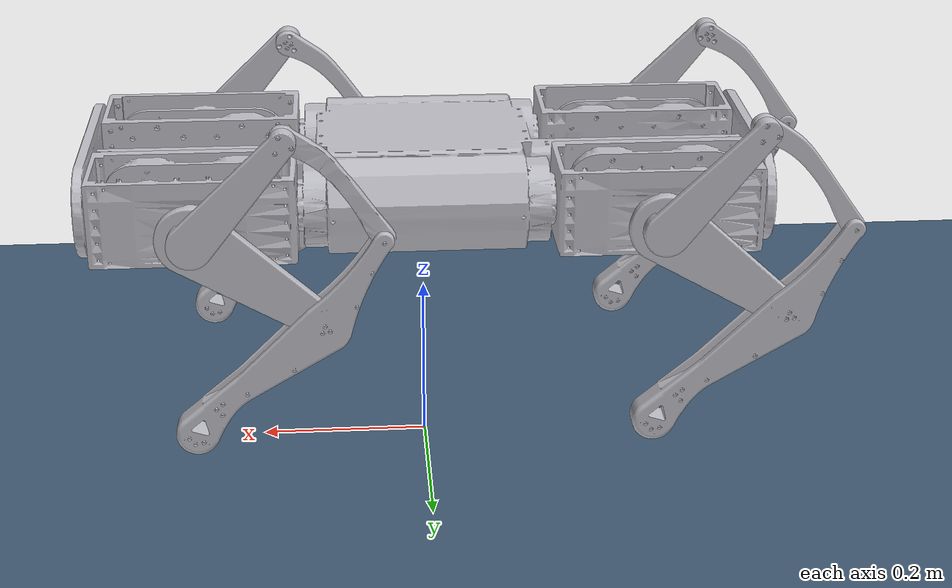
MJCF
<?xml version="1.0" ?>
<mujoco model="mos2026_2">
  <compiler angle="radian" autolimits="true" balanceinertia="true" meshdir="meshes"/>
  <option timestep="0.005" gravity="0 0 -9.81" iterations="50" solver="Newton" integrator="implicitfast"/>
  <default>
    <geom solref="0.005 1" solimp="0.9 0.99 0.001"/>
    <default class="body_visual">
      <geom rgba="0.55 0.55 0.6 1" contype="2" conaffinity="1" friction="1.5 0.1 0.01"/>
    </default>
  </default>
  <asset>
    <texture name="grid" type="2d" builtin="checker" width="256" height="256" rgb1="0.2 0.3 0.4" rgb2="0.3 0.4 0.5"/>
    <material name="grid" texture="grid" texrepeat="10 10" reflectance="0.2"/>
    <mesh name="FL_mesh" file="FL.obj"/>
    <mesh name="FR_mesh" file="FR.obj"/>
    <mesh name="RL_mesh" file="RL.obj"/>
    <mesh name="RR_mesh" file="RR.obj"/>
    <mesh name="base_mesh" file="base.obj"/>
    <mesh name="fl_shank_mesh" file="fl_shank.obj"/>
    <mesh name="fl_shank_link_a_mesh" file="fl_shank_link_a.obj"/>
    <mesh name="fl_shank_link_b_mesh" file="fl_shank_link_b.obj"/>
    <mesh name="fl_shank_motor_gear_mesh" file="fl_shank_motor_gear.obj"/>
    <mesh name="fl_thigh_mesh" file="fl_thigh.obj"/>
    <mesh name="fl_thigh_motor_gear_mesh" file="fl_thigh_motor_gear.obj"/>
    <mesh name="fr_shank_mesh" file="fr_shank.obj"/>
    <mesh name="fr_shank_link_a_mesh" file="fr_shank_link_a.obj"/>
    <mesh name="fr_shank_link_b_mesh" file="fr_shank_link_b.obj"/>
    <mesh name="fr_shank_motor_gear_mesh" file="fr_shank_motor_gear.obj"/>
    <mesh name="fr_thigh_mesh" file="fr_thigh.obj"/>
    <mesh name="fr_thigh_motor_gear_mesh" file="fr_thigh_motor_gear.obj"/>
    <mesh name="rl_shank_mesh" file="rl_shank.obj"/>
    <mesh name="rl_shank_link_a_mesh" file="rl_shank_link_a.obj"/>
    <mesh name="rl_shank_link_b_mesh" file="rl_shank_link_b.obj"/>
    <mesh name="rl_shank_motor_gear_mesh" file="rl_shank_motor_gear.obj"/>
    <mesh name="rl_thigh_mesh" file="rl_thigh.obj"/>
    <mesh name="rl_thigh_motor_gear_mesh" file="rl_thigh_motor_gear.obj"/>
    <mesh name="rr_shank_mesh" file="rr_shank.obj"/>
    <mesh name="rr_shank_link_a_mesh" file="rr_shank_link_a.obj"/>
    <mesh name="rr_shank_link_b_mesh" file="rr_shank_link_b.obj"/>
    <mesh name="rr_shank_motor_gear_mesh" file="rr_shank_motor_gear.obj"/>
    <mesh name="rr_thigh_mesh" file="rr_thigh.obj"/>
    <mesh name="rr_thigh_motor_gear_mesh" file="rr_thigh_motor_gear.obj"/>
    <!-- knee-collision (add_knee_self_collision.py): convex pieces for thigh/shank mechanical-stop pairs -->
    <mesh name="fl_thigh_cvx0_mesh" file="collision/fl_thigh_cvx0.obj"/>
    <mesh name="fl_thigh_cvx1_mesh" file="collision/fl_thigh_cvx1.obj"/>
    <mesh name="fl_thigh_cvx2_mesh" file="collision/fl_thigh_cvx2.obj"/>
    <mesh name="fl_thigh_cvx3_mesh" file="collision/fl_thigh_cvx3.obj"/>
    <mesh name="fl_thigh_cvx4_mesh" file="collision/fl_thigh_cvx4.obj"/>
    <mesh name="fl_thigh_cvx5_mesh" file="collision/fl_thigh_cvx5.obj"/>
    <mesh name="fl_thigh_cvx6_mesh" file="collision/fl_thigh_cvx6.obj"/>
    <mesh name="fl_thigh_cvx7_mesh" file="collision/fl_thigh_cvx7.obj"/>
    <mesh name="fl_shank_cvx0_mesh" file="collision/fl_shank_cvx0.obj"/>
    <mesh name="fl_shank_cvx1_mesh" file="collision/fl_shank_cvx1.obj"/>
    <mesh name="fl_shank_cvx2_mesh" file="collision/fl_shank_cvx2.obj"/>
    <mesh name="fl_shank_cvx3_mesh" file="collision/fl_shank_cvx3.obj"/>
    <mesh name="fl_shank_cvx4_mesh" file="collision/fl_shank_cvx4.obj"/>
    <mesh name="fl_shank_cvx5_mesh" file="collision/fl_shank_cvx5.obj"/>
    <mesh name="fl_shank_cvx6_mesh" file="collision/fl_shank_cvx6.obj"/>
    <mesh name="fl_shank_cvx7_mesh" file="collision/fl_shank_cvx7.obj"/>
    <mesh name="fr_thigh_cvx0_mesh" file="collision/fr_thigh_cvx0.obj"/>
    <mesh name="fr_thigh_cvx1_mesh" file="collision/fr_thigh_cvx1.obj"/>
    <mesh name="fr_thigh_cvx2_mesh" file="collision/fr_thigh_cvx2.obj"/>
    <mesh name="fr_thigh_cvx3_mesh" file="collision/fr_thigh_cvx3.obj"/>
    <mesh name="fr_thigh_cvx4_mesh" file="collision/fr_thigh_cvx4.obj"/>
    <mesh name="fr_thigh_cvx5_mesh" file="collision/fr_thigh_cvx5.obj"/>
    <mesh name="fr_thigh_cvx6_mesh" file="collision/fr_thigh_cvx6.obj"/>
    <mesh name="fr_thigh_cvx7_mesh" file="collision/fr_thigh_cvx7.obj"/>
    <mesh name="fr_shank_cvx0_mesh" file="collision/fr_shank_cvx0.obj"/>
    <mesh name="fr_shank_cvx1_mesh" file="collision/fr_shank_cvx1.obj"/>
    <mesh name="fr_shank_cvx2_mesh" file="collision/fr_shank_cvx2.obj"/>
    <mesh name="fr_shank_cvx3_mesh" file="collision/fr_shank_cvx3.obj"/>
    <mesh name="fr_shank_cvx4_mesh" file="collision/fr_shank_cvx4.obj"/>
    <mesh name="fr_shank_cvx5_mesh" file="collision/fr_shank_cvx5.obj"/>
    <mesh name="fr_shank_cvx6_mesh" file="collision/fr_shank_cvx6.obj"/>
    <mesh name="fr_shank_cvx7_mesh" file="collision/fr_shank_cvx7.obj"/>
    <mesh name="rl_thigh_cvx0_mesh" file="collision/rl_thigh_cvx0.obj"/>
    <mesh name="rl_thigh_cvx1_mesh" file="collision/rl_thigh_cvx1.obj"/>
    <mesh name="rl_thigh_cvx2_mesh" file="collision/rl_thigh_cvx2.obj"/>
    <mesh name="rl_thigh_cvx3_mesh" file="collision/rl_thigh_cvx3.obj"/>
    <mesh name="rl_thigh_cvx4_mesh" file="collision/rl_thigh_cvx4.obj"/>
    <mesh name="rl_thigh_cvx5_mesh" file="collision/rl_thigh_cvx5.obj"/>
    <mesh name="rl_thigh_cvx6_mesh" file="collision/rl_thigh_cvx6.obj"/>
    <mesh name="rl_thigh_cvx7_mesh" file="collision/rl_thigh_cvx7.obj"/>
    <mesh name="rl_shank_cvx0_mesh" file="collision/rl_shank_cvx0.obj"/>
    <mesh name="rl_shank_cvx1_mesh" file="collision/rl_shank_cvx1.obj"/>
    <mesh name="rl_shank_cvx2_mesh" file="collision/rl_shank_cvx2.obj"/>
    <mesh name="rl_shank_cvx3_mesh" file="collision/rl_shank_cvx3.obj"/>
    <mesh name="rl_shank_cvx4_mesh" file="collision/rl_shank_cvx4.obj"/>
    <mesh name="rl_shank_cvx5_mesh" file="collision/rl_shank_cvx5.obj"/>
    <mesh name="rl_shank_cvx6_mesh" file="collision/rl_shank_cvx6.obj"/>
    <mesh name="rl_shank_cvx7_mesh" file="collision/rl_shank_cvx7.obj"/>
    <mesh name="rr_thigh_cvx0_mesh" file="collision/rr_thigh_cvx0.obj"/>
    <mesh name="rr_thigh_cvx1_mesh" file="collision/rr_thigh_cvx1.obj"/>
    <mesh name="rr_thigh_cvx2_mesh" file="collision/rr_thigh_cvx2.obj"/>
    <mesh name="rr_thigh_cvx3_mesh" file="collision/rr_thigh_cvx3.obj"/>
    <mesh name="rr_thigh_cvx4_mesh" file="collision/rr_thigh_cvx4.obj"/>
    <mesh name="rr_thigh_cvx5_mesh" file="collision/rr_thigh_cvx5.obj"/>
    <mesh name="rr_thigh_cvx6_mesh" file="collision/rr_thigh_cvx6.obj"/>
    <mesh name="rr_thigh_cvx7_mesh" file="collision/rr_thigh_cvx7.obj"/>
    <mesh name="rr_shank_cvx0_mesh" file="collision/rr_shank_cvx0.obj"/>
    <mesh name="rr_shank_cvx1_mesh" file="collision/rr_shank_cvx1.obj"/>
    <mesh name="rr_shank_cvx2_mesh" file="collision/rr_shank_cvx2.obj"/>
    <mesh name="rr_shank_cvx3_mesh" file="collision/rr_shank_cvx3.obj"/>
    <mesh name="rr_shank_cvx4_mesh" file="collision/rr_shank_cvx4.obj"/>
    <mesh name="rr_shank_cvx5_mesh" file="collision/rr_shank_cvx5.obj"/>
    <mesh name="rr_shank_cvx6_mesh" file="collision/rr_shank_cvx6.obj"/>
    <mesh name="rr_shank_cvx7_mesh" file="collision/rr_shank_cvx7.obj"/>
  </asset>
  <worldbody>
    <light name="spot" pos="0 0 3" dir="0 0 -1" directional="true"/>
    <geom name="floor" type="plane" size="20 20 0.1" material="grid" friction="1.5 0.1 0.01" contype="1" conaffinity="1"/>
    <body name="base" pos="0.000000 0.000000 0.350000" quat="1 0 0 0">
      <freejoint name="root"/>
      <inertial mass="4.520163" pos="-0.000760 0.000206 -0.000012" diaginertia="0.011891 0.011720 0.019358" quat="1.000000 -0.000000 0.000299 -0.000127"/>
      <geom name="base_geom" type="mesh" mesh="base_mesh" class="body_visual" rgba="1 1 1 0"/>
      <geom name="base_visual" type="mesh" mesh="base_mesh" contype="0" conaffinity="0" group="1" rgba="0.75 0.75 0.78 1"/>
      <body name="FL" pos="0.378300 0.098000 0.000000" quat="1.000000 0.000000 0.000000 0.000000">
        <joint name="fl_hip" type="hinge" pos="0.000000 0.000000 0.000000" axis="-1.000000 0.000000 0.000000" damping="0.05" range="-1.570000 1.570000" limited="true"/>
        <inertial mass="0.985181" pos="-0.114293 -0.009015 -0.000144" diaginertia="0.000918 0.002659 0.002082" quat="1.000000 -0.000337 -0.000061 0.000002"/>
        <geom name="FL_geom" type="mesh" mesh="FL_mesh" class="body_visual" rgba="1 1 1 0"/>
        <geom name="FL_visual" type="mesh" mesh="FL_mesh" contype="0" conaffinity="0" group="1" rgba="0.75 0.75 0.78 1"/>
        <body name="fl_shank_link_a" pos="-0.116000 0.087150 -0.010100" quat="1.000000 0.000000 0.000000 0.000000">
          <joint name="fl_shank_link" type="hinge" pos="0.000000 0.000000 0.000000" axis="0.000000 -1.000000 0.000000" damping="0.05" range="-1.570000 1.570000" limited="true"/>
          <inertial mass="0.171588" pos="-0.029157 -0.015180 0.032474" diaginertia="0.000444 0.000444 0.000049" quat="0.933408 -0.006455 -0.358660 -0.008386"/>
          <geom name="fl_shank_link_a_geom" type="mesh" mesh="fl_shank_link_a_mesh" class="body_visual" rgba="1 1 1 0"/>
          <geom name="fl_shank_link_a_visual" type="mesh" mesh="fl_shank_link_a_mesh" contype="0" conaffinity="0" group="1" rgba="0.75 0.75 0.78 1"/>
          <body name="fl_shank_link_b" pos="-0.104652 -0.006004 0.116201" quat="1.000000 0.000000 0.000000 0.000000">
            <joint name="fl_shank_link_b" type="hinge" pos="0.000000 0.000000 0.000000" axis="0.000000 1.000000 0.000000" damping="0.05" range="-1.570000 1.570000" limited="true"/>
            <inertial mass="0.046939" pos="-0.053747 -0.012823 -0.048469" diaginertia="0.000133 0.000136 0.000004" quat="0.933455 0.001996 0.358505 0.011457"/>
            <geom name="fl_shank_link_b_geom" type="mesh" mesh="fl_shank_link_b_mesh" class="body_visual" rgba="1 1 1 0"/>
            <geom name="fl_shank_link_b_visual" type="mesh" mesh="fl_shank_link_b_mesh" contype="0" conaffinity="0" group="1" rgba="0.75 0.75 0.78 1"/>
          </body>
        </body>
        <body name="fl_shank_motor_gear" pos="-0.066000 0.046150 0.000000" quat="1.000000 0.000000 0.000000 0.000000">
          <joint name="fl_shank_motor_gear" type="hinge" pos="0.000000 0.000000 0.000000" axis="0.000000 -1.000000 0.000000" damping="0.05" range="-1.570000 1.570000" limited="true"/>
          <inertial mass="0.038524" pos="0.000000 -0.039054 0.000000" diaginertia="0.000009 0.000010 0.000009" quat="1.000000 0.000000 0.000000 0.000000"/>
          <geom name="fl_shank_motor_gear_geom" type="mesh" mesh="fl_shank_motor_gear_mesh" class="body_visual" rgba="1 1 1 0"/>
          <geom name="fl_shank_motor_gear_visual" type="mesh" mesh="fl_shank_motor_gear_mesh" contype="0" conaffinity="0" group="1" rgba="0.75 0.75 0.78 1"/>
        </body>
        <body name="fl_thigh" pos="-0.116000 0.068150 -0.010100" quat="1.000000 0.000000 0.000000 0.000000">
          <joint name="fl_thigh" type="hinge" pos="0.000000 0.000000 0.000000" axis="0.000000 -1.000000 0.000000" damping="0.05" range="-1.570000 1.570000" limited="true"/>
          <inertial mass="0.218416" pos="-0.038288 -0.006463 -0.028166" diaginertia="0.000087 0.000729 0.000667" quat="0.950074 0.003534 -0.311819 -0.010768"/>
          <geom name="fl_thigh_geom" type="mesh" mesh="fl_thigh_mesh" class="body_visual" rgba="1 1 1 0"/>
          <geom name="fl_thigh_visual" type="mesh" mesh="fl_thigh_mesh" contype="0" conaffinity="0" group="1" rgba="0.75 0.75 0.78 1"/>
          <geom name="fl_thigh_cvx0" type="mesh" mesh="fl_thigh_cvx0_mesh" contype="0" conaffinity="0" group="4" rgba="0.9 0.2 0.2 0.3"/>
          <geom name="fl_thigh_cvx1" type="mesh" mesh="fl_thigh_cvx1_mesh" contype="0" conaffinity="0" group="4" rgba="0.9 0.2 0.2 0.3"/>
          <geom name="fl_thigh_cvx2" type="mesh" mesh="fl_thigh_cvx2_mesh" contype="0" conaffinity="0" group="4" rgba="0.9 0.2 0.2 0.3"/>
          <geom name="fl_thigh_cvx3" type="mesh" mesh="fl_thigh_cvx3_mesh" contype="0" conaffinity="0" group="4" rgba="0.9 0.2 0.2 0.3"/>
          <geom name="fl_thigh_cvx4" type="mesh" mesh="fl_thigh_cvx4_mesh" contype="0" conaffinity="0" group="4" rgba="0.9 0.2 0.2 0.3"/>
          <geom name="fl_thigh_cvx5" type="mesh" mesh="fl_thigh_cvx5_mesh" contype="0" conaffinity="0" group="4" rgba="0.9 0.2 0.2 0.3"/>
          <geom name="fl_thigh_cvx6" type="mesh" mesh="fl_thigh_cvx6_mesh" contype="0" conaffinity="0" group="4" rgba="0.9 0.2 0.2 0.3"/>
          <geom name="fl_thigh_cvx7" type="mesh" mesh="fl_thigh_cvx7_mesh" contype="0" conaffinity="0" group="4" rgba="0.9 0.2 0.2 0.3"/>
          <body name="fl_shank" pos="-0.144992 0.008000 -0.106664" quat="1.000000 0.000000 0.000000 0.000000">
            <joint name="fl_shank" type="hinge" pos="0.000000 0.000000 0.000000" axis="0.000000 -1.000000 0.000000" damping="0.05" range="-1.570000 1.570000" limited="true"/>
            <inertial mass="0.286222" pos="0.053689 -0.004525 -0.041214" diaginertia="0.000064 0.001309 0.001261" quat="0.924069 -0.000323 0.382225 0.000664"/>
            <geom name="fl_shank_geom" type="mesh" mesh="fl_shank_mesh" class="body_visual" rgba="1 1 1 0"/>
            <geom name="fl_shank_visual" type="mesh" mesh="fl_shank_mesh" contype="0" conaffinity="0" group="1" rgba="0.75 0.75 0.78 1"/>
            <geom name="fl_shank_cvx0" type="mesh" mesh="fl_shank_cvx0_mesh" contype="0" conaffinity="0" group="4" rgba="0.9 0.2 0.2 0.3"/>
            <geom name="fl_shank_cvx1" type="mesh" mesh="fl_shank_cvx1_mesh" contype="0" conaffinity="0" group="4" rgba="0.9 0.2 0.2 0.3"/>
            <geom name="fl_shank_cvx2" type="mesh" mesh="fl_shank_cvx2_mesh" contype="0" conaffinity="0" group="4" rgba="0.9 0.2 0.2 0.3"/>
            <geom name="fl_shank_cvx3" type="mesh" mesh="fl_shank_cvx3_mesh" contype="0" conaffinity="0" group="4" rgba="0.9 0.2 0.2 0.3"/>
            <geom name="fl_shank_cvx4" type="mesh" mesh="fl_shank_cvx4_mesh" contype="0" conaffinity="0" group="4" rgba="0.9 0.2 0.2 0.3"/>
            <geom name="fl_shank_cvx5" type="mesh" mesh="fl_shank_cvx5_mesh" contype="0" conaffinity="0" group="4" rgba="0.9 0.2 0.2 0.3"/>
            <geom name="fl_shank_cvx6" type="mesh" mesh="fl_shank_cvx6_mesh" contype="0" conaffinity="0" group="4" rgba="0.9 0.2 0.2 0.3"/>
            <geom name="fl_shank_cvx7" type="mesh" mesh="fl_shank_cvx7_mesh" contype="0" conaffinity="0" group="4" rgba="0.9 0.2 0.2 0.3"/>
          </body>
        </body>
        <body name="fl_thigh_motor_gear" pos="-0.166000 0.046150 0.000000" quat="1.000000 0.000000 0.000000 0.000000">
          <joint name="fl_thigh_motor_gear" type="hinge" pos="0.000000 0.000000 0.000000" axis="0.000000 -1.000000 0.000000" damping="0.05" range="-1.570000 1.570000" limited="true"/>
          <inertial mass="0.048236" pos="0.000000 -0.030398 0.000000" diaginertia="0.000011 0.000013 0.000011" quat="1.000000 0.000000 0.000000 0.000000"/>
          <geom name="fl_thigh_motor_gear_geom" type="mesh" mesh="fl_thigh_motor_gear_mesh" class="body_visual" rgba="1 1 1 0"/>
          <geom name="fl_thigh_motor_gear_visual" type="mesh" mesh="fl_thigh_motor_gear_mesh" contype="0" conaffinity="0" group="1" rgba="0.75 0.75 0.78 1"/>
        </body>
      </body>
      <body name="FR" pos="0.378300 -0.098000 0.000000" quat="1.000000 0.000000 0.000000 0.000000">
        <joint name="fr_hip" type="hinge" pos="0.000000 0.000000 0.000000" axis="-1.000000 0.000000 0.000000" damping="0.05" range="-1.570000 1.570000" limited="true"/>
        <inertial mass="0.985181" pos="-0.126572 0.005029 -0.000156" diaginertia="0.000807 0.002446 0.001967" quat="1.000000 0.000437 -0.000095 0.000042"/>
        <geom name="FR_geom" type="mesh" mesh="FR_mesh" class="body_visual" rgba="1 1 1 0"/>
        <geom name="FR_visual" type="mesh" mesh="FR_mesh" contype="0" conaffinity="0" group="1" rgba="0.75 0.75 0.78 1"/>
        <body name="fr_shank_link_a" pos="-0.116000 -0.087150 -0.010100" quat="1.000000 0.000000 0.000000 0.000000">
          <joint name="fr_shank_link_a" type="hinge" pos="0.000000 0.000000 0.000000" axis="0.000000 1.000000 0.000000" damping="0.05" range="-1.570000 1.570000" limited="true"/>
          <inertial mass="0.171588" pos="-0.029256 0.015180 0.032385" diaginertia="0.000444 0.000444 0.000049" quat="0.933606 0.010405 -0.358145 -0.001902"/>
          <geom name="fr_shank_link_a_geom" type="mesh" mesh="fr_shank_link_a_mesh" class="body_visual" rgba="1 1 1 0"/>
          <geom name="fr_shank_link_a_visual" type="mesh" mesh="fr_shank_link_a_mesh" contype="0" conaffinity="0" group="1" rgba="0.75 0.75 0.78 1"/>
          <body name="fr_shank_link_b" pos="-0.104652 0.006004 0.116201" quat="1.000000 0.000000 0.000000 0.000000">
            <joint name="fr_shank_link_b" type="hinge" pos="0.000000 0.000000 0.000000" axis="0.000000 -1.000000 0.000000" damping="0.05" range="-1.570000 1.570000" limited="true"/>
            <inertial mass="0.046943" pos="-0.053743 0.012826 -0.048466" diaginertia="0.000133 0.000136 0.000004" quat="0.933445 -0.001985 0.358534 -0.011426"/>
            <geom name="fr_shank_link_b_geom" type="mesh" mesh="fr_shank_link_b_mesh" class="body_visual" rgba="1 1 1 0"/>
            <geom name="fr_shank_link_b_visual" type="mesh" mesh="fr_shank_link_b_mesh" contype="0" conaffinity="0" group="1" rgba="0.75 0.75 0.78 1"/>
          </body>
        </body>
        <body name="fr_shank_motor_gear" pos="-0.066000 -0.046150 0.000000" quat="1.000000 0.000000 0.000000 0.000000">
          <joint name="fr_shank_motor" type="hinge" pos="0.000000 0.000000 0.000000" axis="0.000000 1.000000 0.000000" damping="0.05" range="-1.570000 1.570000" limited="true"/>
          <inertial mass="0.038524" pos="0.000000 0.039054 -0.000000" diaginertia="0.000009 0.000010 0.000009" quat="1.000000 0.000000 0.000000 0.000000"/>
          <geom name="fr_shank_motor_gear_geom" type="mesh" mesh="fr_shank_motor_gear_mesh" class="body_visual" rgba="1 1 1 0"/>
          <geom name="fr_shank_motor_gear_visual" type="mesh" mesh="fr_shank_motor_gear_mesh" contype="0" conaffinity="0" group="1" rgba="0.75 0.75 0.78 1"/>
        </body>
        <body name="fr_thigh" pos="-0.116000 -0.068150 -0.010100" quat="1.000000 0.000000 0.000000 0.000000">
          <joint name="fr_thigh" type="hinge" pos="0.000000 0.000000 0.000000" axis="0.000000 1.000000 0.000000" damping="0.05" range="-1.570000 1.570000" limited="true"/>
          <inertial mass="0.218416" pos="-0.038288 0.006463 -0.028167" diaginertia="0.000087 0.000729 0.000667" quat="0.950074 -0.003534 -0.311819 0.010768"/>
          <geom name="fr_thigh_geom" type="mesh" mesh="fr_thigh_mesh" class="body_visual" rgba="1 1 1 0"/>
          <geom name="fr_thigh_visual" type="mesh" mesh="fr_thigh_mesh" contype="0" conaffinity="0" group="1" rgba="0.75 0.75 0.78 1"/>
          <geom name="fr_thigh_cvx0" type="mesh" mesh="fr_thigh_cvx0_mesh" contype="0" conaffinity="0" group="4" rgba="0.9 0.2 0.2 0.3"/>
          <geom name="fr_thigh_cvx1" type="mesh" mesh="fr_thigh_cvx1_mesh" contype="0" conaffinity="0" group="4" rgba="0.9 0.2 0.2 0.3"/>
          <geom name="fr_thigh_cvx2" type="mesh" mesh="fr_thigh_cvx2_mesh" contype="0" conaffinity="0" group="4" rgba="0.9 0.2 0.2 0.3"/>
          <geom name="fr_thigh_cvx3" type="mesh" mesh="fr_thigh_cvx3_mesh" contype="0" conaffinity="0" group="4" rgba="0.9 0.2 0.2 0.3"/>
          <geom name="fr_thigh_cvx4" type="mesh" mesh="fr_thigh_cvx4_mesh" contype="0" conaffinity="0" group="4" rgba="0.9 0.2 0.2 0.3"/>
          <geom name="fr_thigh_cvx5" type="mesh" mesh="fr_thigh_cvx5_mesh" contype="0" conaffinity="0" group="4" rgba="0.9 0.2 0.2 0.3"/>
          <geom name="fr_thigh_cvx6" type="mesh" mesh="fr_thigh_cvx6_mesh" contype="0" conaffinity="0" group="4" rgba="0.9 0.2 0.2 0.3"/>
          <geom name="fr_thigh_cvx7" type="mesh" mesh="fr_thigh_cvx7_mesh" contype="0" conaffinity="0" group="4" rgba="0.9 0.2 0.2 0.3"/>
          <body name="fr_shank" pos="-0.144992 -0.008000 -0.106664" quat="1.000000 0.000000 0.000000 0.000000">
            <joint name="fr_shank" type="hinge" pos="0.000000 0.000000 0.000000" axis="0.000000 1.000000 0.000000" damping="0.05" range="-1.570000 1.570000" limited="true"/>
            <inertial mass="0.286223" pos="0.053689 0.002521 -0.041214" diaginertia="0.000064 0.001309 0.001261" quat="0.924069 0.000323 0.382225 -0.000664"/>
            <geom name="fr_shank_geom" type="mesh" mesh="fr_shank_mesh" class="body_visual" rgba="1 1 1 0"/>
            <geom name="fr_shank_visual" type="mesh" mesh="fr_shank_mesh" contype="0" conaffinity="0" group="1" rgba="0.75 0.75 0.78 1"/>
            <geom name="fr_shank_cvx0" type="mesh" mesh="fr_shank_cvx0_mesh" contype="0" conaffinity="0" group="4" rgba="0.9 0.2 0.2 0.3"/>
            <geom name="fr_shank_cvx1" type="mesh" mesh="fr_shank_cvx1_mesh" contype="0" conaffinity="0" group="4" rgba="0.9 0.2 0.2 0.3"/>
            <geom name="fr_shank_cvx2" type="mesh" mesh="fr_shank_cvx2_mesh" contype="0" conaffinity="0" group="4" rgba="0.9 0.2 0.2 0.3"/>
            <geom name="fr_shank_cvx3" type="mesh" mesh="fr_shank_cvx3_mesh" contype="0" conaffinity="0" group="4" rgba="0.9 0.2 0.2 0.3"/>
            <geom name="fr_shank_cvx4" type="mesh" mesh="fr_shank_cvx4_mesh" contype="0" conaffinity="0" group="4" rgba="0.9 0.2 0.2 0.3"/>
            <geom name="fr_shank_cvx5" type="mesh" mesh="fr_shank_cvx5_mesh" contype="0" conaffinity="0" group="4" rgba="0.9 0.2 0.2 0.3"/>
            <geom name="fr_shank_cvx6" type="mesh" mesh="fr_shank_cvx6_mesh" contype="0" conaffinity="0" group="4" rgba="0.9 0.2 0.2 0.3"/>
            <geom name="fr_shank_cvx7" type="mesh" mesh="fr_shank_cvx7_mesh" contype="0" conaffinity="0" group="4" rgba="0.9 0.2 0.2 0.3"/>
          </body>
        </body>
        <body name="fr_thigh_motor_gear" pos="-0.166000 -0.046150 0.000000" quat="1.000000 0.000000 0.000000 0.000000">
          <joint name="fr_thigh_motor" type="hinge" pos="0.000000 0.000000 0.000000" axis="0.000000 1.000000 0.000000" damping="0.05" range="-1.570000 1.570000" limited="true"/>
          <inertial mass="0.048236" pos="-0.000000 0.030398 -0.000000" diaginertia="0.000011 0.000013 0.000011" quat="1.000000 0.000000 0.000000 0.000000"/>
          <geom name="fr_thigh_motor_gear_geom" type="mesh" mesh="fr_thigh_motor_gear_mesh" class="body_visual" rgba="1 1 1 0"/>
          <geom name="fr_thigh_motor_gear_visual" type="mesh" mesh="fr_thigh_motor_gear_mesh" contype="0" conaffinity="0" group="1" rgba="0.75 0.75 0.78 1"/>
        </body>
      </body>
      <body name="RL" pos="-0.389329 0.098000 0.000000" quat="1.000000 0.000000 0.000000 0.000000">
        <joint name="rl_hip" type="hinge" pos="0.000000 0.000000 0.000000" axis="1.000000 0.000000 0.000000" damping="0.05" range="-1.570000 1.570000" limited="true"/>
        <inertial mass="0.985181" pos="0.125406 -0.009015 -0.000144" diaginertia="0.000918 0.002659 0.002082" quat="1.000000 -0.000337 -0.000061 -0.000017"/>
        <geom name="RL_geom" type="mesh" mesh="RL_mesh" class="body_visual" rgba="1 1 1 0"/>
        <geom name="RL_visual" type="mesh" mesh="RL_mesh" contype="0" conaffinity="0" group="1" rgba="0.75 0.75 0.78 1"/>
        <body name="rl_shank_link_a" pos="0.127029 0.087150 -0.010100" quat="1.000000 0.000000 0.000000 0.000000">
          <joint name="rl_shank_link_a" type="hinge" pos="0.000000 0.000000 0.000000" axis="0.000000 -1.000000 0.000000" damping="0.05" range="-1.570000 1.570000" limited="true"/>
          <inertial mass="0.171588" pos="-0.029157 -0.015180 0.032474" diaginertia="0.000444 0.000444 0.000049" quat="0.933408 -0.006455 -0.358660 -0.008386"/>
          <geom name="rl_shank_link_a_geom" type="mesh" mesh="rl_shank_link_a_mesh" class="body_visual" rgba="1 1 1 0"/>
          <geom name="rl_shank_link_a_visual" type="mesh" mesh="rl_shank_link_a_mesh" contype="0" conaffinity="0" group="1" rgba="0.75 0.75 0.78 1"/>
          <body name="rl_shank_link_b" pos="-0.104652 -0.006004 0.116201" quat="1.000000 0.000000 0.000000 0.000000">
            <joint name="rl_shank_link_b" type="hinge" pos="0.000000 0.000000 0.000000" axis="0.000000 1.000000 0.000000" damping="0.05" range="-1.570000 1.570000" limited="true"/>
            <inertial mass="0.046939" pos="-0.053747 -0.012823 -0.048469" diaginertia="0.000133 0.000136 0.000004" quat="0.933455 0.001996 0.358505 0.011457"/>
            <geom name="rl_shank_link_b_geom" type="mesh" mesh="rl_shank_link_b_mesh" class="body_visual" rgba="1 1 1 0"/>
            <geom name="rl_shank_link_b_visual" type="mesh" mesh="rl_shank_link_b_mesh" contype="0" conaffinity="0" group="1" rgba="0.75 0.75 0.78 1"/>
          </body>
        </body>
        <body name="rl_shank_motor_gear" pos="0.177029 0.046150 0.000000" quat="1.000000 0.000000 0.000000 0.000000">
          <joint name="rl_shank_motor" type="hinge" pos="0.000000 0.000000 0.000000" axis="0.000000 1.000000 0.000000" damping="0.05" range="-1.570000 1.570000" limited="true"/>
          <inertial mass="0.038524" pos="0.000000 -0.039054 0.000000" diaginertia="0.000009 0.000010 0.000009" quat="1.000000 0.000000 0.000000 0.000000"/>
          <geom name="rl_shank_motor_gear_geom" type="mesh" mesh="rl_shank_motor_gear_mesh" class="body_visual" rgba="1 1 1 0"/>
          <geom name="rl_shank_motor_gear_visual" type="mesh" mesh="rl_shank_motor_gear_mesh" contype="0" conaffinity="0" group="1" rgba="0.75 0.75 0.78 1"/>
        </body>
        <body name="rl_thigh" pos="0.127029 0.087150 -0.010100" quat="1.000000 0.000000 0.000000 0.000000">
          <joint name="rl_thigh" type="hinge" pos="0.000000 0.000000 0.000000" axis="0.000000 -1.000000 0.000000" damping="0.05" range="-1.570000 1.570000" limited="true"/>
          <inertial mass="0.218416" pos="-0.038288 -0.025463 -0.028166" diaginertia="0.000087 0.000729 0.000667" quat="0.950074 0.003534 -0.311819 -0.010768"/>
          <geom name="rl_thigh_geom" type="mesh" mesh="rl_thigh_mesh" class="body_visual" rgba="1 1 1 0"/>
          <geom name="rl_thigh_visual" type="mesh" mesh="rl_thigh_mesh" contype="0" conaffinity="0" group="1" rgba="0.75 0.75 0.78 1"/>
          <geom name="rl_thigh_cvx0" type="mesh" mesh="rl_thigh_cvx0_mesh" contype="0" conaffinity="0" group="4" rgba="0.9 0.2 0.2 0.3"/>
          <geom name="rl_thigh_cvx1" type="mesh" mesh="rl_thigh_cvx1_mesh" contype="0" conaffinity="0" group="4" rgba="0.9 0.2 0.2 0.3"/>
          <geom name="rl_thigh_cvx2" type="mesh" mesh="rl_thigh_cvx2_mesh" contype="0" conaffinity="0" group="4" rgba="0.9 0.2 0.2 0.3"/>
          <geom name="rl_thigh_cvx3" type="mesh" mesh="rl_thigh_cvx3_mesh" contype="0" conaffinity="0" group="4" rgba="0.9 0.2 0.2 0.3"/>
          <geom name="rl_thigh_cvx4" type="mesh" mesh="rl_thigh_cvx4_mesh" contype="0" conaffinity="0" group="4" rgba="0.9 0.2 0.2 0.3"/>
          <geom name="rl_thigh_cvx5" type="mesh" mesh="rl_thigh_cvx5_mesh" contype="0" conaffinity="0" group="4" rgba="0.9 0.2 0.2 0.3"/>
          <geom name="rl_thigh_cvx6" type="mesh" mesh="rl_thigh_cvx6_mesh" contype="0" conaffinity="0" group="4" rgba="0.9 0.2 0.2 0.3"/>
          <geom name="rl_thigh_cvx7" type="mesh" mesh="rl_thigh_cvx7_mesh" contype="0" conaffinity="0" group="4" rgba="0.9 0.2 0.2 0.3"/>
          <body name="rl_shank" pos="-0.144992 -0.011000 -0.106664" quat="1.000000 0.000000 0.000000 0.000000">
            <joint name="rl_shank" type="hinge" pos="0.000000 0.000000 0.000000" axis="0.000000 -1.000000 0.000000" damping="0.05" range="-1.570000 1.570000" limited="true"/>
            <inertial mass="0.286222" pos="0.053689 -0.004525 -0.041214" diaginertia="0.000064 0.001309 0.001261" quat="0.924069 -0.000323 0.382225 0.000664"/>
            <geom name="rl_shank_geom" type="mesh" mesh="rl_shank_mesh" class="body_visual" rgba="1 1 1 0"/>
            <geom name="rl_shank_visual" type="mesh" mesh="rl_shank_mesh" contype="0" conaffinity="0" group="1" rgba="0.75 0.75 0.78 1"/>
            <geom name="rl_shank_cvx0" type="mesh" mesh="rl_shank_cvx0_mesh" contype="0" conaffinity="0" group="4" rgba="0.9 0.2 0.2 0.3"/>
            <geom name="rl_shank_cvx1" type="mesh" mesh="rl_shank_cvx1_mesh" contype="0" conaffinity="0" group="4" rgba="0.9 0.2 0.2 0.3"/>
            <geom name="rl_shank_cvx2" type="mesh" mesh="rl_shank_cvx2_mesh" contype="0" conaffinity="0" group="4" rgba="0.9 0.2 0.2 0.3"/>
            <geom name="rl_shank_cvx3" type="mesh" mesh="rl_shank_cvx3_mesh" contype="0" conaffinity="0" group="4" rgba="0.9 0.2 0.2 0.3"/>
            <geom name="rl_shank_cvx4" type="mesh" mesh="rl_shank_cvx4_mesh" contype="0" conaffinity="0" group="4" rgba="0.9 0.2 0.2 0.3"/>
            <geom name="rl_shank_cvx5" type="mesh" mesh="rl_shank_cvx5_mesh" contype="0" conaffinity="0" group="4" rgba="0.9 0.2 0.2 0.3"/>
            <geom name="rl_shank_cvx6" type="mesh" mesh="rl_shank_cvx6_mesh" contype="0" conaffinity="0" group="4" rgba="0.9 0.2 0.2 0.3"/>
            <geom name="rl_shank_cvx7" type="mesh" mesh="rl_shank_cvx7_mesh" contype="0" conaffinity="0" group="4" rgba="0.9 0.2 0.2 0.3"/>
          </body>
        </body>
        <body name="rl_thigh_motor_gear" pos="0.077029 0.046150 0.000000" quat="1.000000 0.000000 0.000000 0.000000">
          <joint name="rl_thigh_motor" type="hinge" pos="0.000000 0.000000 0.000000" axis="0.000000 1.000000 0.000000" damping="0.05" range="-1.570000 1.570000" limited="true"/>
          <inertial mass="0.048236" pos="-0.000000 -0.030398 0.000000" diaginertia="0.000011 0.000013 0.000011" quat="1.000000 0.000000 0.000000 0.000000"/>
          <geom name="rl_thigh_motor_gear_geom" type="mesh" mesh="rl_thigh_motor_gear_mesh" class="body_visual" rgba="1 1 1 0"/>
          <geom name="rl_thigh_motor_gear_visual" type="mesh" mesh="rl_thigh_motor_gear_mesh" contype="0" conaffinity="0" group="1" rgba="0.75 0.75 0.78 1"/>
        </body>
      </body>
      <body name="RR" pos="-0.372300 -0.098000 0.000000" quat="1.000000 0.000000 0.000000 0.000000">
        <joint name="rr_hip" type="hinge" pos="0.000000 0.000000 0.000000" axis="1.000000 0.000000 0.000000" damping="0.05" range="-1.570000 1.570000" limited="true"/>
        <inertial mass="0.985181" pos="0.108293 0.009015 -0.000144" diaginertia="0.000918 0.002659 0.002082" quat="1.000000 0.000337 0.000061 0.000002"/>
        <geom name="RR_geom" type="mesh" mesh="RR_mesh" class="body_visual" rgba="1 1 1 0"/>
        <geom name="RR_visual" type="mesh" mesh="RR_mesh" contype="0" conaffinity="0" group="1" rgba="0.75 0.75 0.78 1"/>
        <body name="rr_shank_link_a" pos="0.110000 -0.087150 -0.010100" quat="1.000000 0.000000 0.000000 0.000000">
          <joint name="rr_shank_link_a" type="hinge" pos="0.000000 0.000000 0.000000" axis="0.000000 1.000000 0.000000" damping="0.05" range="-1.570000 1.570000" limited="true"/>
          <inertial mass="0.171588" pos="-0.029256 0.015180 0.032385" diaginertia="0.000444 0.000444 0.000049" quat="0.933606 0.010405 -0.358145 -0.001902"/>
          <geom name="rr_shank_link_a_geom" type="mesh" mesh="rr_shank_link_a_mesh" class="body_visual" rgba="1 1 1 0"/>
          <geom name="rr_shank_link_a_visual" type="mesh" mesh="rr_shank_link_a_mesh" contype="0" conaffinity="0" group="1" rgba="0.75 0.75 0.78 1"/>
          <body name="rr_shank_link_b" pos="-0.104652 0.006004 0.116201" quat="1.000000 0.000000 0.000000 0.000000">
            <joint name="rr_shank_link_b" type="hinge" pos="0.000000 0.000000 0.000000" axis="0.000000 -1.000000 0.000000" damping="0.05" range="-1.570000 1.570000" limited="true"/>
            <inertial mass="0.046943" pos="-0.053743 0.012826 -0.048466" diaginertia="0.000133 0.000136 0.000004" quat="0.933445 -0.001985 0.358534 -0.011426"/>
            <geom name="rr_shank_link_b_geom" type="mesh" mesh="rr_shank_link_b_mesh" class="body_visual" rgba="1 1 1 0"/>
            <geom name="rr_shank_link_b_visual" type="mesh" mesh="rr_shank_link_b_mesh" contype="0" conaffinity="0" group="1" rgba="0.75 0.75 0.78 1"/>
          </body>
        </body>
        <body name="rr_shank_motor_gear" pos="0.160000 -0.046150 0.000000" quat="1.000000 0.000000 0.000000 0.000000">
          <joint name="rr_shank_motor" type="hinge" pos="0.000000 0.000000 0.000000" axis="0.000000 -1.000000 0.000000" damping="0.05" range="-1.570000 1.570000" limited="true"/>
          <inertial mass="0.038524" pos="0.000000 0.039054 -0.000000" diaginertia="0.000009 0.000010 0.000009" quat="1.000000 0.000000 0.000000 0.000000"/>
          <geom name="rr_shank_motor_gear_geom" type="mesh" mesh="rr_shank_motor_gear_mesh" class="body_visual" rgba="1 1 1 0"/>
          <geom name="rr_shank_motor_gear_visual" type="mesh" mesh="rr_shank_motor_gear_mesh" contype="0" conaffinity="0" group="1" rgba="0.75 0.75 0.78 1"/>
        </body>
        <body name="rr_thigh" pos="0.110000 -0.068150 -0.010100" quat="1.000000 0.000000 0.000000 0.000000">
          <joint name="rr_thigh" type="hinge" pos="0.000000 0.000000 0.000000" axis="0.000000 1.000000 0.000000" damping="0.05" range="-1.570000 1.570000" limited="true"/>
          <inertial mass="0.218416" pos="-0.038288 0.006463 -0.028167" diaginertia="0.000087 0.000729 0.000667" quat="0.950074 -0.003534 -0.311819 0.010768"/>
          <geom name="rr_thigh_geom" type="mesh" mesh="rr_thigh_mesh" class="body_visual" rgba="1 1 1 0"/>
          <geom name="rr_thigh_visual" type="mesh" mesh="rr_thigh_mesh" contype="0" conaffinity="0" group="1" rgba="0.75 0.75 0.78 1"/>
          <geom name="rr_thigh_cvx0" type="mesh" mesh="rr_thigh_cvx0_mesh" contype="0" conaffinity="0" group="4" rgba="0.9 0.2 0.2 0.3"/>
          <geom name="rr_thigh_cvx1" type="mesh" mesh="rr_thigh_cvx1_mesh" contype="0" conaffinity="0" group="4" rgba="0.9 0.2 0.2 0.3"/>
          <geom name="rr_thigh_cvx2" type="mesh" mesh="rr_thigh_cvx2_mesh" contype="0" conaffinity="0" group="4" rgba="0.9 0.2 0.2 0.3"/>
          <geom name="rr_thigh_cvx3" type="mesh" mesh="rr_thigh_cvx3_mesh" contype="0" conaffinity="0" group="4" rgba="0.9 0.2 0.2 0.3"/>
          <geom name="rr_thigh_cvx4" type="mesh" mesh="rr_thigh_cvx4_mesh" contype="0" conaffinity="0" group="4" rgba="0.9 0.2 0.2 0.3"/>
          <geom name="rr_thigh_cvx5" type="mesh" mesh="rr_thigh_cvx5_mesh" contype="0" conaffinity="0" group="4" rgba="0.9 0.2 0.2 0.3"/>
          <geom name="rr_thigh_cvx6" type="mesh" mesh="rr_thigh_cvx6_mesh" contype="0" conaffinity="0" group="4" rgba="0.9 0.2 0.2 0.3"/>
          <geom name="rr_thigh_cvx7" type="mesh" mesh="rr_thigh_cvx7_mesh" contype="0" conaffinity="0" group="4" rgba="0.9 0.2 0.2 0.3"/>
          <body name="rr_shank" pos="-0.144992 -0.008000 -0.106664" quat="1.000000 0.000000 0.000000 0.000000">
            <joint name="rr_shank" type="hinge" pos="0.000000 0.000000 0.000000" axis="0.000000 1.000000 0.000000" damping="0.05" range="-1.570000 1.570000" limited="true"/>
            <inertial mass="0.286223" pos="0.053689 0.002521 -0.041214" diaginertia="0.000064 0.001309 0.001261" quat="0.924069 0.000323 0.382225 -0.000664"/>
            <geom name="rr_shank_geom" type="mesh" mesh="rr_shank_mesh" class="body_visual" rgba="1 1 1 0"/>
            <geom name="rr_shank_visual" type="mesh" mesh="rr_shank_mesh" contype="0" conaffinity="0" group="1" rgba="0.75 0.75 0.78 1"/>
            <geom name="rr_shank_cvx0" type="mesh" mesh="rr_shank_cvx0_mesh" contype="0" conaffinity="0" group="4" rgba="0.9 0.2 0.2 0.3"/>
            <geom name="rr_shank_cvx1" type="mesh" mesh="rr_shank_cvx1_mesh" contype="0" conaffinity="0" group="4" rgba="0.9 0.2 0.2 0.3"/>
            <geom name="rr_shank_cvx2" type="mesh" mesh="rr_shank_cvx2_mesh" contype="0" conaffinity="0" group="4" rgba="0.9 0.2 0.2 0.3"/>
            <geom name="rr_shank_cvx3" type="mesh" mesh="rr_shank_cvx3_mesh" contype="0" conaffinity="0" group="4" rgba="0.9 0.2 0.2 0.3"/>
            <geom name="rr_shank_cvx4" type="mesh" mesh="rr_shank_cvx4_mesh" contype="0" conaffinity="0" group="4" rgba="0.9 0.2 0.2 0.3"/>
            <geom name="rr_shank_cvx5" type="mesh" mesh="rr_shank_cvx5_mesh" contype="0" conaffinity="0" group="4" rgba="0.9 0.2 0.2 0.3"/>
            <geom name="rr_shank_cvx6" type="mesh" mesh="rr_shank_cvx6_mesh" contype="0" conaffinity="0" group="4" rgba="0.9 0.2 0.2 0.3"/>
            <geom name="rr_shank_cvx7" type="mesh" mesh="rr_shank_cvx7_mesh" contype="0" conaffinity="0" group="4" rgba="0.9 0.2 0.2 0.3"/>
          </body>
        </body>
        <body name="rr_thigh_motor_gear" pos="0.060000 -0.046150 0.000000" quat="1.000000 0.000000 0.000000 0.000000">
          <joint name="rr_thigh_motor" type="hinge" pos="0.000000 0.000000 0.000000" axis="0.000000 1.000000 0.000000" damping="0.05" range="-1.570000 1.570000" limited="true"/>
          <inertial mass="0.048236" pos="0.000000 0.030398 -0.000000" diaginertia="0.000011 0.000013 0.000011" quat="1.000000 0.000000 0.000000 0.000000"/>
          <geom name="rr_thigh_motor_gear_geom" type="mesh" mesh="rr_thigh_motor_gear_mesh" class="body_visual" rgba="1 1 1 0"/>
          <geom name="rr_thigh_motor_gear_visual" type="mesh" mesh="rr_thigh_motor_gear_mesh" contype="0" conaffinity="0" group="1" rgba="0.75 0.75 0.78 1"/>
        </body>
      </body>
    </body>
  </worldbody>
  <!-- knee-collision (add_knee_self_collision.py): thigh-shank mechanical stop -->
  <contact>
    <pair geom1="fl_thigh_cvx0" geom2="fl_shank_cvx0"/>
    <pair geom1="fl_thigh_cvx0" geom2="fl_shank_cvx1"/>
    <pair geom1="fl_thigh_cvx0" geom2="fl_shank_cvx2"/>
    <pair geom1="fl_thigh_cvx0" geom2="fl_shank_cvx3"/>
    <pair geom1="fl_thigh_cvx0" geom2="fl_shank_cvx4"/>
    <pair geom1="fl_thigh_cvx0" geom2="fl_shank_cvx5"/>
    <pair geom1="fl_thigh_cvx0" geom2="fl_shank_cvx6"/>
    <pair geom1="fl_thigh_cvx0" geom2="fl_shank_cvx7"/>
    <pair geom1="fl_thigh_cvx1" geom2="fl_shank_cvx0"/>
    <pair geom1="fl_thigh_cvx1" geom2="fl_shank_cvx1"/>
    <pair geom1="fl_thigh_cvx1" geom2="fl_shank_cvx2"/>
    <pair geom1="fl_thigh_cvx1" geom2="fl_shank_cvx3"/>
    <pair geom1="fl_thigh_cvx1" geom2="fl_shank_cvx4"/>
    <pair geom1="fl_thigh_cvx1" geom2="fl_shank_cvx5"/>
    <pair geom1="fl_thigh_cvx1" geom2="fl_shank_cvx6"/>
    <pair geom1="fl_thigh_cvx1" geom2="fl_shank_cvx7"/>
    <pair geom1="fl_thigh_cvx2" geom2="fl_shank_cvx0"/>
    <pair geom1="fl_thigh_cvx2" geom2="fl_shank_cvx1"/>
    <pair geom1="fl_thigh_cvx2" geom2="fl_shank_cvx2"/>
    <pair geom1="fl_thigh_cvx2" geom2="fl_shank_cvx3"/>
    <pair geom1="fl_thigh_cvx2" geom2="fl_shank_cvx4"/>
    <pair geom1="fl_thigh_cvx2" geom2="fl_shank_cvx5"/>
    <pair geom1="fl_thigh_cvx2" geom2="fl_shank_cvx6"/>
    <pair geom1="fl_thigh_cvx2" geom2="fl_shank_cvx7"/>
    <pair geom1="fl_thigh_cvx3" geom2="fl_shank_cvx0"/>
    <pair geom1="fl_thigh_cvx3" geom2="fl_shank_cvx1"/>
    <pair geom1="fl_thigh_cvx3" geom2="fl_shank_cvx2"/>
    <pair geom1="fl_thigh_cvx3" geom2="fl_shank_cvx3"/>
    <pair geom1="fl_thigh_cvx3" geom2="fl_shank_cvx4"/>
    <pair geom1="fl_thigh_cvx3" geom2="fl_shank_cvx5"/>
    <pair geom1="fl_thigh_cvx3" geom2="fl_shank_cvx6"/>
    <pair geom1="fl_thigh_cvx3" geom2="fl_shank_cvx7"/>
    <pair geom1="fl_thigh_cvx4" geom2="fl_shank_cvx0"/>
    <pair geom1="fl_thigh_cvx4" geom2="fl_shank_cvx1"/>
    <pair geom1="fl_thigh_cvx4" geom2="fl_shank_cvx2"/>
    <pair geom1="fl_thigh_cvx4" geom2="fl_shank_cvx3"/>
    <pair geom1="fl_thigh_cvx4" geom2="fl_shank_cvx4"/>
    <pair geom1="fl_thigh_cvx4" geom2="fl_shank_cvx5"/>
    <pair geom1="fl_thigh_cvx4" geom2="fl_shank_cvx6"/>
    <pair geom1="fl_thigh_cvx4" geom2="fl_shank_cvx7"/>
    <pair geom1="fl_thigh_cvx5" geom2="fl_shank_cvx0"/>
    <pair geom1="fl_thigh_cvx5" geom2="fl_shank_cvx1"/>
    <pair geom1="fl_thigh_cvx5" geom2="fl_shank_cvx2"/>
    <pair geom1="fl_thigh_cvx5" geom2="fl_shank_cvx3"/>
    <pair geom1="fl_thigh_cvx5" geom2="fl_shank_cvx4"/>
    <pair geom1="fl_thigh_cvx5" geom2="fl_shank_cvx5"/>
    <pair geom1="fl_thigh_cvx5" geom2="fl_shank_cvx6"/>
    <pair geom1="fl_thigh_cvx5" geom2="fl_shank_cvx7"/>
    <pair geom1="fl_thigh_cvx6" geom2="fl_shank_cvx0"/>
    <pair geom1="fl_thigh_cvx6" geom2="fl_shank_cvx1"/>
    <pair geom1="fl_thigh_cvx6" geom2="fl_shank_cvx2"/>
    <pair geom1="fl_thigh_cvx6" geom2="fl_shank_cvx3"/>
    <pair geom1="fl_thigh_cvx6" geom2="fl_shank_cvx4"/>
    <pair geom1="fl_thigh_cvx6" geom2="fl_shank_cvx5"/>
    <pair geom1="fl_thigh_cvx6" geom2="fl_shank_cvx6"/>
    <pair geom1="fl_thigh_cvx6" geom2="fl_shank_cvx7"/>
    <pair geom1="fl_thigh_cvx7" geom2="fl_shank_cvx1"/>
    <pair geom1="fl_thigh_cvx7" geom2="fl_shank_cvx2"/>
    <pair geom1="fl_thigh_cvx7" geom2="fl_shank_cvx3"/>
    <pair geom1="fl_thigh_cvx7" geom2="fl_shank_cvx4"/>
    <pair geom1="fl_thigh_cvx7" geom2="fl_shank_cvx6"/>
    <pair geom1="fl_thigh_cvx7" geom2="fl_shank_cvx7"/>
    <pair geom1="fr_thigh_cvx0" geom2="fr_shank_cvx0"/>
    <pair geom1="fr_thigh_cvx0" geom2="fr_shank_cvx1"/>
    <pair geom1="fr_thigh_cvx0" geom2="fr_shank_cvx2"/>
    <pair geom1="fr_thigh_cvx0" geom2="fr_shank_cvx3"/>
    <pair geom1="fr_thigh_cvx0" geom2="fr_shank_cvx4"/>
    <pair geom1="fr_thigh_cvx0" geom2="fr_shank_cvx5"/>
    <pair geom1="fr_thigh_cvx0" geom2="fr_shank_cvx6"/>
    <pair geom1="fr_thigh_cvx0" geom2="fr_shank_cvx7"/>
    <pair geom1="fr_thigh_cvx1" geom2="fr_shank_cvx0"/>
    <pair geom1="fr_thigh_cvx1" geom2="fr_shank_cvx1"/>
    <pair geom1="fr_thigh_cvx1" geom2="fr_shank_cvx2"/>
    <pair geom1="fr_thigh_cvx1" geom2="fr_shank_cvx3"/>
    <pair geom1="fr_thigh_cvx1" geom2="fr_shank_cvx4"/>
    <pair geom1="fr_thigh_cvx1" geom2="fr_shank_cvx5"/>
    <pair geom1="fr_thigh_cvx1" geom2="fr_shank_cvx6"/>
    <pair geom1="fr_thigh_cvx1" geom2="fr_shank_cvx7"/>
    <pair geom1="fr_thigh_cvx2" geom2="fr_shank_cvx0"/>
    <pair geom1="fr_thigh_cvx2" geom2="fr_shank_cvx1"/>
    <pair geom1="fr_thigh_cvx2" geom2="fr_shank_cvx2"/>
    <pair geom1="fr_thigh_cvx2" geom2="fr_shank_cvx3"/>
    <pair geom1="fr_thigh_cvx2" geom2="fr_shank_cvx4"/>
    <pair geom1="fr_thigh_cvx2" geom2="fr_shank_cvx5"/>
    <pair geom1="fr_thigh_cvx2" geom2="fr_shank_cvx6"/>
    <pair geom1="fr_thigh_cvx2" geom2="fr_shank_cvx7"/>
    <pair geom1="fr_thigh_cvx3" geom2="fr_shank_cvx0"/>
    <pair geom1="fr_thigh_cvx3" geom2="fr_shank_cvx4"/>
    <pair geom1="fr_thigh_cvx3" geom2="fr_shank_cvx6"/>
    <pair geom1="fr_thigh_cvx4" geom2="fr_shank_cvx0"/>
    <pair geom1="fr_thigh_cvx4" geom2="fr_shank_cvx1"/>
    <pair geom1="fr_thigh_cvx4" geom2="fr_shank_cvx2"/>
    <pair geom1="fr_thigh_cvx4" geom2="fr_shank_cvx3"/>
    <pair geom1="fr_thigh_cvx4" geom2="fr_shank_cvx4"/>
    <pair geom1="fr_thigh_cvx4" geom2="fr_shank_cvx5"/>
    <pair geom1="fr_thigh_cvx4" geom2="fr_shank_cvx6"/>
    <pair geom1="fr_thigh_cvx4" geom2="fr_shank_cvx7"/>
    <pair geom1="fr_thigh_cvx5" geom2="fr_shank_cvx0"/>
    <pair geom1="fr_thigh_cvx5" geom2="fr_shank_cvx1"/>
    <pair geom1="fr_thigh_cvx5" geom2="fr_shank_cvx2"/>
    <pair geom1="fr_thigh_cvx5" geom2="fr_shank_cvx3"/>
    <pair geom1="fr_thigh_cvx5" geom2="fr_shank_cvx4"/>
    <pair geom1="fr_thigh_cvx5" geom2="fr_shank_cvx5"/>
    <pair geom1="fr_thigh_cvx5" geom2="fr_shank_cvx6"/>
    <pair geom1="fr_thigh_cvx5" geom2="fr_shank_cvx7"/>
    <pair geom1="fr_thigh_cvx6" geom2="fr_shank_cvx0"/>
    <pair geom1="fr_thigh_cvx6" geom2="fr_shank_cvx1"/>
    <pair geom1="fr_thigh_cvx6" geom2="fr_shank_cvx2"/>
    <pair geom1="fr_thigh_cvx6" geom2="fr_shank_cvx4"/>
    <pair geom1="fr_thigh_cvx6" geom2="fr_shank_cvx5"/>
    <pair geom1="fr_thigh_cvx6" geom2="fr_shank_cvx6"/>
    <pair geom1="fr_thigh_cvx6" geom2="fr_shank_cvx7"/>
    <pair geom1="fr_thigh_cvx7" geom2="fr_shank_cvx0"/>
    <pair geom1="fr_thigh_cvx7" geom2="fr_shank_cvx1"/>
    <pair geom1="fr_thigh_cvx7" geom2="fr_shank_cvx2"/>
    <pair geom1="fr_thigh_cvx7" geom2="fr_shank_cvx3"/>
    <pair geom1="fr_thigh_cvx7" geom2="fr_shank_cvx4"/>
    <pair geom1="fr_thigh_cvx7" geom2="fr_shank_cvx5"/>
    <pair geom1="fr_thigh_cvx7" geom2="fr_shank_cvx6"/>
    <pair geom1="fr_thigh_cvx7" geom2="fr_shank_cvx7"/>
    <pair geom1="rl_thigh_cvx0" geom2="rl_shank_cvx0"/>
    <pair geom1="rl_thigh_cvx0" geom2="rl_shank_cvx1"/>
    <pair geom1="rl_thigh_cvx0" geom2="rl_shank_cvx2"/>
    <pair geom1="rl_thigh_cvx0" geom2="rl_shank_cvx3"/>
    <pair geom1="rl_thigh_cvx0" geom2="rl_shank_cvx4"/>
    <pair geom1="rl_thigh_cvx0" geom2="rl_shank_cvx5"/>
    <pair geom1="rl_thigh_cvx0" geom2="rl_shank_cvx6"/>
    <pair geom1="rl_thigh_cvx0" geom2="rl_shank_cvx7"/>
    <pair geom1="rl_thigh_cvx1" geom2="rl_shank_cvx0"/>
    <pair geom1="rl_thigh_cvx1" geom2="rl_shank_cvx1"/>
    <pair geom1="rl_thigh_cvx1" geom2="rl_shank_cvx2"/>
    <pair geom1="rl_thigh_cvx1" geom2="rl_shank_cvx3"/>
    <pair geom1="rl_thigh_cvx1" geom2="rl_shank_cvx4"/>
    <pair geom1="rl_thigh_cvx1" geom2="rl_shank_cvx5"/>
    <pair geom1="rl_thigh_cvx1" geom2="rl_shank_cvx6"/>
    <pair geom1="rl_thigh_cvx1" geom2="rl_shank_cvx7"/>
    <pair geom1="rl_thigh_cvx2" geom2="rl_shank_cvx0"/>
    <pair geom1="rl_thigh_cvx2" geom2="rl_shank_cvx1"/>
    <pair geom1="rl_thigh_cvx2" geom2="rl_shank_cvx2"/>
    <pair geom1="rl_thigh_cvx2" geom2="rl_shank_cvx3"/>
    <pair geom1="rl_thigh_cvx2" geom2="rl_shank_cvx4"/>
    <pair geom1="rl_thigh_cvx2" geom2="rl_shank_cvx5"/>
    <pair geom1="rl_thigh_cvx2" geom2="rl_shank_cvx6"/>
    <pair geom1="rl_thigh_cvx2" geom2="rl_shank_cvx7"/>
    <pair geom1="rl_thigh_cvx3" geom2="rl_shank_cvx0"/>
    <pair geom1="rl_thigh_cvx3" geom2="rl_shank_cvx1"/>
    <pair geom1="rl_thigh_cvx3" geom2="rl_shank_cvx2"/>
    <pair geom1="rl_thigh_cvx3" geom2="rl_shank_cvx3"/>
    <pair geom1="rl_thigh_cvx3" geom2="rl_shank_cvx4"/>
    <pair geom1="rl_thigh_cvx3" geom2="rl_shank_cvx5"/>
    <pair geom1="rl_thigh_cvx3" geom2="rl_shank_cvx6"/>
    <pair geom1="rl_thigh_cvx3" geom2="rl_shank_cvx7"/>
    <pair geom1="rl_thigh_cvx4" geom2="rl_shank_cvx0"/>
    <pair geom1="rl_thigh_cvx4" geom2="rl_shank_cvx1"/>
    <pair geom1="rl_thigh_cvx4" geom2="rl_shank_cvx2"/>
    <pair geom1="rl_thigh_cvx4" geom2="rl_shank_cvx3"/>
    <pair geom1="rl_thigh_cvx4" geom2="rl_shank_cvx4"/>
    <pair geom1="rl_thigh_cvx4" geom2="rl_shank_cvx5"/>
    <pair geom1="rl_thigh_cvx4" geom2="rl_shank_cvx6"/>
    <pair geom1="rl_thigh_cvx4" geom2="rl_shank_cvx7"/>
    <pair geom1="rl_thigh_cvx5" geom2="rl_shank_cvx0"/>
    <pair geom1="rl_thigh_cvx5" geom2="rl_shank_cvx1"/>
    <pair geom1="rl_thigh_cvx5" geom2="rl_shank_cvx2"/>
    <pair geom1="rl_thigh_cvx5" geom2="rl_shank_cvx3"/>
    <pair geom1="rl_thigh_cvx5" geom2="rl_shank_cvx4"/>
    <pair geom1="rl_thigh_cvx5" geom2="rl_shank_cvx5"/>
    <pair geom1="rl_thigh_cvx5" geom2="rl_shank_cvx6"/>
    <pair geom1="rl_thigh_cvx5" geom2="rl_shank_cvx7"/>
    <pair geom1="rl_thigh_cvx6" geom2="rl_shank_cvx1"/>
    <pair geom1="rl_thigh_cvx6" geom2="rl_shank_cvx2"/>
    <pair geom1="rl_thigh_cvx6" geom2="rl_shank_cvx3"/>
    <pair geom1="rl_thigh_cvx6" geom2="rl_shank_cvx4"/>
    <pair geom1="rl_thigh_cvx6" geom2="rl_shank_cvx6"/>
    <pair geom1="rl_thigh_cvx6" geom2="rl_shank_cvx7"/>
    <pair geom1="rl_thigh_cvx7" geom2="rl_shank_cvx0"/>
    <pair geom1="rl_thigh_cvx7" geom2="rl_shank_cvx1"/>
    <pair geom1="rl_thigh_cvx7" geom2="rl_shank_cvx2"/>
    <pair geom1="rl_thigh_cvx7" geom2="rl_shank_cvx3"/>
    <pair geom1="rl_thigh_cvx7" geom2="rl_shank_cvx4"/>
    <pair geom1="rl_thigh_cvx7" geom2="rl_shank_cvx5"/>
    <pair geom1="rl_thigh_cvx7" geom2="rl_shank_cvx6"/>
    <pair geom1="rl_thigh_cvx7" geom2="rl_shank_cvx7"/>
    <pair geom1="rr_thigh_cvx0" geom2="rr_shank_cvx0"/>
    <pair geom1="rr_thigh_cvx0" geom2="rr_shank_cvx1"/>
    <pair geom1="rr_thigh_cvx0" geom2="rr_shank_cvx2"/>
    <pair geom1="rr_thigh_cvx0" geom2="rr_shank_cvx3"/>
    <pair geom1="rr_thigh_cvx0" geom2="rr_shank_cvx4"/>
    <pair geom1="rr_thigh_cvx0" geom2="rr_shank_cvx5"/>
    <pair geom1="rr_thigh_cvx0" geom2="rr_shank_cvx6"/>
    <pair geom1="rr_thigh_cvx0" geom2="rr_shank_cvx7"/>
    <pair geom1="rr_thigh_cvx1" geom2="rr_shank_cvx0"/>
    <pair geom1="rr_thigh_cvx1" geom2="rr_shank_cvx1"/>
    <pair geom1="rr_thigh_cvx1" geom2="rr_shank_cvx2"/>
    <pair geom1="rr_thigh_cvx1" geom2="rr_shank_cvx3"/>
    <pair geom1="rr_thigh_cvx1" geom2="rr_shank_cvx4"/>
    <pair geom1="rr_thigh_cvx1" geom2="rr_shank_cvx5"/>
    <pair geom1="rr_thigh_cvx1" geom2="rr_shank_cvx6"/>
    <pair geom1="rr_thigh_cvx1" geom2="rr_shank_cvx7"/>
    <pair geom1="rr_thigh_cvx2" geom2="rr_shank_cvx0"/>
    <pair geom1="rr_thigh_cvx2" geom2="rr_shank_cvx1"/>
    <pair geom1="rr_thigh_cvx2" geom2="rr_shank_cvx2"/>
    <pair geom1="rr_thigh_cvx2" geom2="rr_shank_cvx3"/>
    <pair geom1="rr_thigh_cvx2" geom2="rr_shank_cvx4"/>
    <pair geom1="rr_thigh_cvx2" geom2="rr_shank_cvx5"/>
    <pair geom1="rr_thigh_cvx2" geom2="rr_shank_cvx6"/>
    <pair geom1="rr_thigh_cvx2" geom2="rr_shank_cvx7"/>
    <pair geom1="rr_thigh_cvx3" geom2="rr_shank_cvx0"/>
    <pair geom1="rr_thigh_cvx3" geom2="rr_shank_cvx1"/>
    <pair geom1="rr_thigh_cvx3" geom2="rr_shank_cvx2"/>
    <pair geom1="rr_thigh_cvx3" geom2="rr_shank_cvx3"/>
    <pair geom1="rr_thigh_cvx3" geom2="rr_shank_cvx4"/>
    <pair geom1="rr_thigh_cvx3" geom2="rr_shank_cvx5"/>
    <pair geom1="rr_thigh_cvx3" geom2="rr_shank_cvx6"/>
    <pair geom1="rr_thigh_cvx3" geom2="rr_shank_cvx7"/>
    <pair geom1="rr_thigh_cvx4" geom2="rr_shank_cvx0"/>
    <pair geom1="rr_thigh_cvx4" geom2="rr_shank_cvx1"/>
    <pair geom1="rr_thigh_cvx4" geom2="rr_shank_cvx3"/>
    <pair geom1="rr_thigh_cvx4" geom2="rr_shank_cvx4"/>
    <pair geom1="rr_thigh_cvx4" geom2="rr_shank_cvx5"/>
    <pair geom1="rr_thigh_cvx4" geom2="rr_shank_cvx6"/>
    <pair geom1="rr_thigh_cvx4" geom2="rr_shank_cvx7"/>
    <pair geom1="rr_thigh_cvx5" geom2="rr_shank_cvx0"/>
    <pair geom1="rr_thigh_cvx5" geom2="rr_shank_cvx1"/>
    <pair geom1="rr_thigh_cvx5" geom2="rr_shank_cvx2"/>
    <pair geom1="rr_thigh_cvx5" geom2="rr_shank_cvx3"/>
    <pair geom1="rr_thigh_cvx5" geom2="rr_shank_cvx4"/>
    <pair geom1="rr_thigh_cvx5" geom2="rr_shank_cvx5"/>
    <pair geom1="rr_thigh_cvx5" geom2="rr_shank_cvx6"/>
    <pair geom1="rr_thigh_cvx5" geom2="rr_shank_cvx7"/>
    <pair geom1="rr_thigh_cvx6" geom2="rr_shank_cvx0"/>
    <pair geom1="rr_thigh_cvx6" geom2="rr_shank_cvx1"/>
    <pair geom1="rr_thigh_cvx6" geom2="rr_shank_cvx4"/>
    <pair geom1="rr_thigh_cvx6" geom2="rr_shank_cvx5"/>
    <pair geom1="rr_thigh_cvx6" geom2="rr_shank_cvx7"/>
    <pair geom1="rr_thigh_cvx7" geom2="rr_shank_cvx0"/>
    <pair geom1="rr_thigh_cvx7" geom2="rr_shank_cvx1"/>
    <pair geom1="rr_thigh_cvx7" geom2="rr_shank_cvx2"/>
    <pair geom1="rr_thigh_cvx7" geom2="rr_shank_cvx3"/>
    <pair geom1="rr_thigh_cvx7" geom2="rr_shank_cvx4"/>
    <pair geom1="rr_thigh_cvx7" geom2="rr_shank_cvx5"/>
    <pair geom1="rr_thigh_cvx7" geom2="rr_shank_cvx6"/>
    <pair geom1="rr_thigh_cvx7" geom2="rr_shank_cvx7"/>
  </contact>
  <equality>
    <connect name="fl_close_loop" body1="fl_shank_link_b" body2="fl_shank" anchor="-0.107640 -0.005000 -0.118510" solref="0.002 1"/>
    <connect name="rl_close_loop" body1="rl_shank_link_b" body2="rl_shank" anchor="-0.107640 -0.004996 -0.118510" solref="0.002 1"/>
    <connect name="rr_close_loop" body1="rr_shank_link_b" body2="rr_shank" anchor="-0.107640 0.004996 -0.118510" solref="0.002 1"/>
    <connect name="fr_close_loop" body1="fr_shank_link_b" body2="fr_shank" anchor="-0.107640 0.004996 -0.118510" solref="0.002 1"/>
  </equality>
  <actuator>
    <position name="act_fl_hip" joint="fl_hip" kp="25.0" kv="0.5" forcerange="-80.0 80.0" ctrlrange="-3.14159 3.14159"/>
    <position name="act_fr_hip" joint="fr_hip" kp="25.0" kv="0.5" forcerange="-80.0 80.0" ctrlrange="-3.14159 3.14159"/>
    <position name="act_rl_hip" joint="rl_hip" kp="25.0" kv="0.5" forcerange="-80.0 80.0" ctrlrange="-3.14159 3.14159"/>
    <position name="act_rr_hip" joint="rr_hip" kp="25.0" kv="0.5" forcerange="-80.0 80.0" ctrlrange="-3.14159 3.14159"/>
    <position name="act_fl_thigh" joint="fl_thigh" kp="25.0" kv="0.5" forcerange="-80.0 80.0" ctrlrange="-3.14159 3.14159"/>
    <position name="act_fr_thigh" joint="fr_thigh" kp="25.0" kv="0.5" forcerange="-80.0 80.0" ctrlrange="-3.14159 3.14159"/>
    <position name="act_rl_thigh" joint="rl_thigh" kp="25.0" kv="0.5" forcerange="-80.0 80.0" ctrlrange="-3.14159 3.14159"/>
    <position name="act_rr_thigh" joint="rr_thigh" kp="25.0" kv="0.5" forcerange="-80.0 80.0" ctrlrange="-3.14159 3.14159"/>
    <position name="act_fl_shank_link" joint="fl_shank_link" kp="25.0" kv="0.5" forcerange="-80.0 80.0" ctrlrange="-3.14159 3.14159"/>
    <position name="act_fr_shank_link_a" joint="fr_shank_link_a" kp="25.0" kv="0.5" forcerange="-80.0 80.0" ctrlrange="-3.14159 3.14159"/>
    <position name="act_rl_shank_link_a" joint="rl_shank_link_a" kp="25.0" kv="0.5" forcerange="-80.0 80.0" ctrlrange="-3.14159 3.14159"/>
    <position name="act_rr_shank_link_a" joint="rr_shank_link_a" kp="25.0" kv="0.5" forcerange="-80.0 80.0" ctrlrange="-3.14159 3.14159"/>
  </actuator>
</mujoco>
